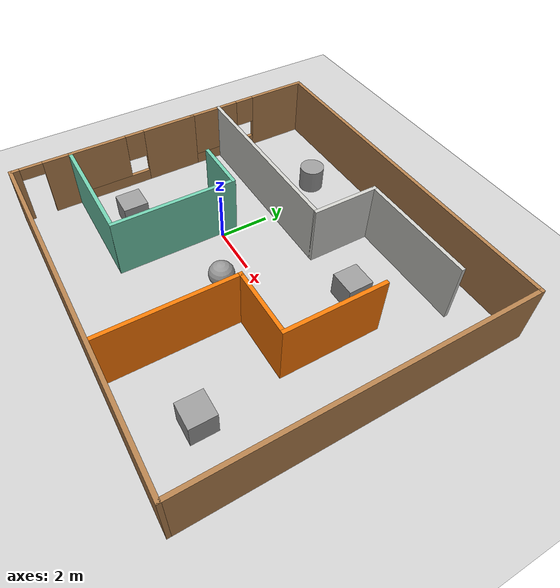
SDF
<sdf version="1.7">
 <world name="default">
  <light name="sun" type="directional">
   <pose>0 0 10 0 -0 0</pose>
   <diffuse>0.8 0.8 0.8 1</diffuse>
   <specular>0.2 0.2 0.2 1</specular>
   <attenuation>
    <range>1000</range>
    <constant>0.9</constant>
    <linear>0.01</linear>
    <quadratic>0.001</quadratic>
   </attenuation>
   <direction>-0.5 0.1 -0.9</direction>
   <spot><inner_angle>0</inner_angle><outer_angle>0</outer_angle><falloff>0</falloff></spot>
  </light>
  <model name="ground_plane">
   <static>1</static>
   <link name="link">
    <collision name="collision">
     <geometry><plane><normal>0 0 1</normal><size>100 100</size></plane></geometry>
     <surface>
      <contact><collide_bitmask>65535</collide_bitmask></contact>
      <friction><ode><mu>100</mu><mu2>50</mu2></ode></friction>
     </surface>
    </collision>
    <visual name="visual">
     <cast_shadows>0</cast_shadows>
     <geometry><plane><normal>0 0 1</normal><size>100 100</size></plane></geometry>
     <material>
      <script><uri>file://media/materials/scripts/gazebo.material</uri><name>Gazebo/Grey</name></script>
     </material>
    </visual>
   </link>
  </model>
  <gravity>0 0 -9.8</gravity>
  <magnetic_field>6e-06 2.3e-05 -4.2e-05</magnetic_field>
  <atmosphere type="adiabatic"/>
  <physics type="ode">
   <max_step_size>0.001</max_step_size>
   <real_time_factor>1</real_time_factor>
   <real_time_update_rate>1000</real_time_update_rate>
  </physics>
  <scene><ambient>0.4 0.4 0.4 1</ambient><background>0.7 0.7 0.7 1</background><shadows>1</shadows></scene>
  <audio><device>default</device></audio>
  <spherical_coordinates>
   <surface_model>EARTH_WGS84</surface_model>
   <latitude_deg>0</latitude_deg>
   <longitude_deg>0</longitude_deg>
   <elevation>0</elevation>
   <heading_deg>0</heading_deg>
  </spherical_coordinates>
  <model name="small_room">
   <pose>2.27525 -0.024975 0 0 -0 0</pose>
   <link name="Wall_0">
    <pose>-7.04035 -1.525 0 0 -0 -1.5708</pose>
    <visual name="Wall_0_Visual_0">
     <pose>-1.59233 0 1.25 0 -0 0</pose>
     <geometry><box><size>2.31534 0.15 2.5</size></box></geometry>
     <material>
      <script><uri>file://media/materials/scripts/gazebo.material</uri><name>Gazebo/Wood</name></script>
      <ambient>1 1 1 1</ambient>
     </material>
     <meta><layer>0</layer></meta>
    </visual>
    <collision name="Wall_0_Collision_0">
     <geometry><box><size>2.31534 0.15 2.5</size></box></geometry>
     <pose>-1.59233 0 1.25 0 -0 0</pose>
    </collision>
    <visual name="Wall_0_Visual_1">
     <pose>1.15767 0 0.25 0 -0 0</pose>
     <geometry><box><size>3.18466 0.15 0.5</size></box></geometry>
     <material>
      <script><uri>file://media/materials/scripts/gazebo.material</uri><name>Gazebo/Wood</name></script>
      <ambient>1 1 1 1</ambient>
     </material>
     <meta><layer>0</layer></meta>
    </visual>
    <collision name="Wall_0_Collision_1">
     <geometry><box><size>3.18466 0.15 0.5</size></box></geometry>
     <pose>1.15767 0 0.25 0 -0 0</pose>
    </collision>
    <visual name="Wall_0_Visual_2">
     <pose>1.55767 0 1.5 0 -0 0</pose>
     <geometry><box><size>2.38466 0.15 2</size></box></geometry>
     <material>
      <script><uri>file://media/materials/scripts/gazebo.material</uri><name>Gazebo/Wood</name></script>
      <ambient>1 1 1 1</ambient>
     </material>
     <meta><layer>0</layer></meta>
    </visual>
    <collision name="Wall_0_Collision_2">
     <geometry><box><size>2.38466 0.15 2</size></box></geometry>
     <pose>1.55767 0 1.5 0 -0 0</pose>
    </collision>
    <visual name="Wall_0_Visual_3">
     <pose>-0.034661 0 1.9 0 -0 0</pose>
     <geometry><box><size>0.8 0.15 1.2</size></box></geometry>
     <material>
      <script><uri>file://media/materials/scripts/gazebo.material</uri><name>Gazebo/Wood</name></script>
      <ambient>1 1 1 1</ambient>
     </material>
     <meta><layer>0</layer></meta>
    </visual>
    <collision name="Wall_0_Collision_3">
     <geometry><box><size>0.8 0.15 1.2</size></box></geometry>
     <pose>-0.034661 0 1.9 0 -0 0</pose>
    </collision>
   </link>
   <link name="Wall_10">
    <collision name="Wall_10_Collision">
     <geometry><box><size>14.25 0.15 2.5</size></box></geometry>
     <pose>0 0 1.25 0 -0 0</pose>
    </collision>
    <visual name="Wall_10_Visual">
     <pose>0 0 1.25 0 -0 0</pose>
     <geometry><box><size>14.25 0.15 2.5</size></box></geometry>
     <material>
      <script><uri>file://media/materials/scripts/gazebo.material</uri><name>Gazebo/Wood</name></script>
      <ambient>1 1 1 1</ambient>
     </material>
     <meta><layer>0</layer></meta>
    </visual>
    <pose>0.009645 6.55 0 0 -0 0</pose>
   </link>
   <link name="Wall_11">
    <collision name="Wall_11_Collision">
     <geometry><box><size>13.25 0.15 2.5</size></box></geometry>
     <pose>0 0 1.25 0 -0 0</pose>
    </collision>
    <visual name="Wall_11_Visual">
     <pose>0 0 1.25 0 -0 0</pose>
     <geometry><box><size>13.25 0.15 2.5</size></box></geometry>
     <material>
      <script><uri>file://media/materials/scripts/gazebo.material</uri><name>Gazebo/Wood</name></script>
      <ambient>1 1 1 1</ambient>
     </material>
     <meta><layer>0</layer></meta>
    </visual>
    <pose>7.05964 -0 0 0 -0 -1.5708</pose>
   </link>
   <link name="Wall_12">
    <collision name="Wall_12_Collision">
     <geometry><box><size>14.25 0.15 2.5</size></box></geometry>
     <pose>0 0 1.25 0 -0 0</pose>
    </collision>
    <visual name="Wall_12_Visual">
     <pose>0 0 1.25 0 -0 0</pose>
     <geometry><box><size>14.25 0.15 2.5</size></box></geometry>
     <material>
      <script><uri>file://media/materials/scripts/gazebo.material</uri><name>Gazebo/Wood</name></script>
      <ambient>1 1 1 1</ambient>
     </material>
     <meta><layer>0</layer></meta>
    </visual>
    <pose>0.009645 -6.55 0 0 -0 3.14159</pose>
   </link>
   <link name="Wall_14">
    <collision name="Wall_14_Collision">
     <geometry><box><size>4.75 0.15 2.5</size></box></geometry>
     <pose>0 0 1.25 0 -0 0</pose>
    </collision>
    <visual name="Wall_14_Visual">
     <pose>0 0 1.25 0 -0 0</pose>
     <geometry><box><size>4.75 0.15 2.5</size></box></geometry>
     <material>
      <script><uri>file://media/materials/scripts/gazebo.material</uri><name>Gazebo/Grey</name></script>
      <ambient>0.435294 0.796078 0.67451 1</ambient>
     </material>
     <meta><layer>0</layer></meta>
    </visual>
    <pose>-4.74036 -4.2 0 0 -0 0</pose>
   </link>
   <link name="Wall_16">
    <collision name="Wall_16_Collision">
     <geometry><box><size>5 0.15 2.5</size></box></geometry>
     <pose>0 0 1.25 0 -0 0</pose>
    </collision>
    <visual name="Wall_16_Visual">
     <pose>0 0 1.25 0 -0 0</pose>
     <geometry><box><size>5 0.15 2.5</size></box></geometry>
     <material>
      <script><uri>file://media/materials/scripts/gazebo.material</uri><name>Gazebo/Grey</name></script>
      <ambient>0.435294 0.796078 0.67451 1</ambient>
     </material>
     <meta><layer>0</layer></meta>
    </visual>
    <pose>-2.44035 -1.775 0 0 -0 1.5708</pose>
   </link>
   <link name="Wall_17">
    <collision name="Wall_17_Collision">
     <geometry><box><size>2.25 0.15 2.5</size></box></geometry>
     <pose>0 0 1.25 0 -0 0</pose>
    </collision>
    <visual name="Wall_17_Visual">
     <pose>0 0 1.25 0 -0 0</pose>
     <geometry><box><size>2.25 0.15 2.5</size></box></geometry>
     <material>
      <script><uri>file://media/materials/scripts/gazebo.material</uri><name>Gazebo/Grey</name></script>
      <ambient>0.435294 0.796078 0.67451 1</ambient>
     </material>
     <meta><layer>0</layer></meta>
    </visual>
    <pose>-3.49036 0.65 0 0 -0 3.14159</pose>
   </link>
   <link name="Wall_19">
    <collision name="Wall_19_Collision">
     <geometry><box><size>7.75 0.15 2.5</size></box></geometry>
     <pose>0 0 1.25 0 -0 0</pose>
    </collision>
    <visual name="Wall_19_Visual">
     <pose>0 0 1.25 0 -0 0</pose>
     <geometry><box><size>7.75 0.15 2.5</size></box></geometry>
     <material>
      <script><uri>file://media/materials/scripts/gazebo.material</uri><name>Gazebo/CeilingTiled</name></script>
      <ambient>0.921569 0.807843 0.615686 1</ambient>
     </material>
     <meta><layer>0</layer></meta>
    </visual>
    <pose>-3.25965 2.42521 0 0 -0 0</pose>
   </link>
   <link name="Wall_22">
    <collision name="Wall_22_Collision">
     <geometry><box><size>2.75 0.15 2.5</size></box></geometry>
     <pose>0 0 1.25 0 -0 0</pose>
    </collision>
    <visual name="Wall_22_Visual">
     <pose>0 0 1.25 0 -0 0</pose>
     <geometry><box><size>2.75 0.15 2.5</size></box></geometry>
     <material>
      <script><uri>file://media/materials/scripts/gazebo.material</uri><name>Gazebo/CeilingTiled</name></script>
      <ambient>0.921569 0.807843 0.615686 1</ambient>
     </material>
     <meta><layer>0</layer></meta>
    </visual>
    <pose>0.540354 3.72521 0 0 -0 1.5708</pose>
   </link>
   <link name="Wall_23">
    <collision name="Wall_23_Collision">
     <geometry><box><size>4.75 0.15 2.5</size></box></geometry>
     <pose>0 0 1.25 0 -0 0</pose>
    </collision>
    <visual name="Wall_23_Visual">
     <pose>0 0 1.25 0 -0 0</pose>
     <geometry><box><size>4.75 0.15 2.5</size></box></geometry>
     <material>
      <script><uri>file://media/materials/scripts/gazebo.material</uri><name>Gazebo/CeilingTiled</name></script>
      <ambient>0.921569 0.807843 0.615686 1</ambient>
     </material>
     <meta><layer>0</layer></meta>
    </visual>
    <pose>2.84035 5.02521 0 0 -0 0</pose>
   </link>
   <link name="Wall_25">
    <collision name="Wall_25_Collision">
     <geometry><box><size>5.25 0.15 2.5</size></box></geometry>
     <pose>0 0 1.25 0 -0 0</pose>
    </collision>
    <visual name="Wall_25_Visual">
     <pose>0 0 1.25 0 -0 0</pose>
     <geometry><box><size>5.25 0.15 2.5</size></box></geometry>
     <material>
      <script><uri>file://media/materials/scripts/gazebo.material</uri><name>Gazebo/Grey</name></script>
      <ambient>0.996078 0.47451 0.0196078 1</ambient>
     </material>
     <meta><layer>0</layer></meta>
    </visual>
    <pose>1.78093 -3.89596 0 0 -0 1.5708</pose>
   </link>
   <link name="Wall_26">
    <collision name="Wall_26_Collision">
     <geometry><box><size>2.75 0.15 2.5</size></box></geometry>
     <pose>0 0 1.25 0 -0 0</pose>
    </collision>
    <visual name="Wall_26_Visual">
     <pose>0 0 1.25 0 -0 0</pose>
     <geometry><box><size>2.75 0.15 2.5</size></box></geometry>
     <material>
      <script><uri>file://media/materials/scripts/gazebo.material</uri><name>Gazebo/Grey</name></script>
      <ambient>0.996078 0.47451 0.0196078 1</ambient>
     </material>
     <meta><layer>0</layer></meta>
    </visual>
    <pose>3.08093 -1.34596 0 0 -0 0</pose>
   </link>
   <link name="Wall_27">
    <collision name="Wall_27_Collision">
     <geometry><box><size>4 0.15 2.5</size></box></geometry>
     <pose>0 0 1.25 0 -0 0</pose>
    </collision>
    <visual name="Wall_27_Visual">
     <pose>0 0 1.25 0 -0 0</pose>
     <geometry><box><size>4 0.15 2.5</size></box></geometry>
     <material>
      <script><uri>file://media/materials/scripts/gazebo.material</uri><name>Gazebo/Grey</name></script>
      <ambient>0.996078 0.47451 0.0196078 1</ambient>
     </material>
     <meta><layer>0</layer></meta>
    </visual>
    <pose>4.38093 0.579044 0 0 -0 1.5708</pose>
   </link>
   <link name="Wall_5">
    <pose>-7.04035 3.85 0 0 -0 -1.5708</pose>
    <visual name="Wall_5_Visual_0">
     <pose>-1.50221 0 1.25 0 -0 0</pose>
     <geometry><box><size>2.54559 0.15 2.5</size></box></geometry>
     <material>
      <script><uri>file://media/materials/scripts/gazebo.material</uri><name>Gazebo/Wood</name></script>
      <ambient>1 1 1 1</ambient>
     </material>
     <meta><layer>0</layer></meta>
    </visual>
    <collision name="Wall_5_Collision_0">
     <geometry><box><size>2.54559 0.15 2.5</size></box></geometry>
     <pose>-1.50221 0 1.25 0 -0 0</pose>
    </collision>
    <visual name="Wall_5_Visual_1">
     <pose>1.27279 0 0.25 0 -0 0</pose>
     <geometry><box><size>3.00441 0.15 0.5</size></box></geometry>
     <material>
      <script><uri>file://media/materials/scripts/gazebo.material</uri><name>Gazebo/Wood</name></script>
      <ambient>1 1 1 1</ambient>
     </material>
     <meta><layer>0</layer></meta>
    </visual>
    <collision name="Wall_5_Collision_1">
     <geometry><box><size>3.00441 0.15 0.5</size></box></geometry>
     <pose>1.27279 0 0.25 0 -0 0</pose>
    </collision>
    <visual name="Wall_5_Visual_2">
     <pose>1.6728 0 1.5 0 -0 0</pose>
     <geometry><box><size>2.20441 0.15 2</size></box></geometry>
     <material>
      <script><uri>file://media/materials/scripts/gazebo.material</uri><name>Gazebo/Wood</name></script>
      <ambient>1 1 1 1</ambient>
     </material>
     <meta><layer>0</layer></meta>
    </visual>
    <collision name="Wall_5_Collision_2">
     <geometry><box><size>2.20441 0.15 2</size></box></geometry>
     <pose>1.6728 0 1.5 0 -0 0</pose>
    </collision>
    <visual name="Wall_5_Visual_3">
     <pose>0.17059 0 1.9 0 -0 0</pose>
     <geometry><box><size>0.8 0.15 1.2</size></box></geometry>
     <material>
      <script><uri>file://media/materials/scripts/gazebo.material</uri><name>Gazebo/Wood</name></script>
      <ambient>1 1 1 1</ambient>
     </material>
     <meta><layer>0</layer></meta>
    </visual>
    <collision name="Wall_5_Collision_3">
     <geometry><box><size>0.8 0.15 1.2</size></box></geometry>
     <pose>0.17059 0 1.9 0 -0 0</pose>
    </collision>
   </link>
   <link name="Wall_8">
    <pose>-7.04035 -5.375 0 0 -0 -1.5708</pose>
    <visual name="Wall_8_Visual_0">
     <pose>-0.651014 0 1.25 0 -0 0</pose>
     <geometry><box><size>1.19797 0.15 2.5</size></box></geometry>
     <material>
      <script><uri>file://media/materials/scripts/gazebo.material</uri><name>Gazebo/Wood</name></script>
      <ambient>1 1 1 1</ambient>
     </material>
     <meta><layer>0</layer></meta>
    </visual>
    <collision name="Wall_8_Collision_0">
     <geometry><box><size>1.19797 0.15 2.5</size></box></geometry>
     <pose>-0.651014 0 1.25 0 -0 0</pose>
    </collision>
    <visual name="Wall_8_Visual_1">
     <pose>1.04899 0 1.25 0 -0 0</pose>
     <geometry><box><size>0.402029 0.15 2.5</size></box></geometry>
     <material>
      <script><uri>file://media/materials/scripts/gazebo.material</uri><name>Gazebo/Wood</name></script>
      <ambient>1 1 1 1</ambient>
     </material>
     <meta><layer>0</layer></meta>
    </visual>
    <collision name="Wall_8_Collision_1">
     <geometry><box><size>0.402029 0.15 2.5</size></box></geometry>
     <pose>1.04899 0 1.25 0 -0 0</pose>
    </collision>
    <visual name="Wall_8_Visual_2">
     <pose>0.397971 0 2.25 0 -0 0</pose>
     <geometry><box><size>0.9 0.15 0.5</size></box></geometry>
     <material>
      <script><uri>file://media/materials/scripts/gazebo.material</uri><name>Gazebo/Wood</name></script>
      <ambient>1 1 1 1</ambient>
     </material>
     <meta><layer>0</layer></meta>
    </visual>
    <collision name="Wall_8_Collision_2">
     <geometry><box><size>0.9 0.15 0.5</size></box></geometry>
     <pose>0.397971 0 2.25 0 -0 0</pose>
    </collision>
   </link>
   <static>1</static>
  </model>
  <model name="unit_sphere">
   <pose>2.17747 -1.17264 0.5 0 -0 0</pose>
   <link name="link">
    <inertial>
     <mass>1</mass>
     <inertia><ixx>0.1</ixx><ixy>0</ixy><ixz>0</ixz><iyy>0.1</iyy><iyz>0</iyz><izz>0.1</izz></inertia>
    </inertial>
    <collision name="collision"><geometry><sphere><radius>0.5</radius></sphere></geometry></collision>
    <visual name="visual">
     <geometry><sphere><radius>0.5</radius></sphere></geometry>
     <material>
      <script><name>Gazebo/Grey</name><uri>file://media/materials/scripts/gazebo.material</uri></script>
     </material>
    </visual>
   </link>
  </model>
  <model name="unit_box">
   <pose>6.86162 -4.46657 0.499995 -1e-05 -0 -0</pose>
   <link name="link">
    <inertial>
     <mass>1</mass>
     <inertia>
      <ixx>0.166667</ixx>
      <ixy>0</ixy>
      <ixz>0</ixz>
      <iyy>0.166667</iyy>
      <iyz>0</iyz>
      <izz>0.166667</izz>
     </inertia>
    </inertial>
    <collision name="collision"><geometry><box><size>1 1 1</size></box></geometry></collision>
    <visual name="visual">
     <geometry><box><size>1 1 1</size></box></geometry>
     <material>
      <script><name>Gazebo/Grey</name><uri>file://media/materials/scripts/gazebo.material</uri></script>
     </material>
    </visual>
   </link>
  </model>
  <model name="unit_box_0">
   <pose>-2.69204 -2.68848 0.499995 0 1e-05 0</pose>
   <link name="link">
    <inertial>
     <mass>1</mass>
     <inertia>
      <ixx>0.166667</ixx>
      <ixy>0</ixy>
      <ixz>0</ixz>
      <iyy>0.166667</iyy>
      <iyz>0</iyz>
      <izz>0.166667</izz>
     </inertia>
    </inertial>
    <collision name="collision"><geometry><box><size>1 1 1</size></box></geometry></collision>
    <visual name="visual">
     <geometry><box><size>1 1 1</size></box></geometry>
     <material>
      <script><name>Gazebo/Grey</name><uri>file://media/materials/scripts/gazebo.material</uri></script>
     </material>
    </visual>
   </link>
  </model>
  <model name="unit_cylinder">
   <pose>-0.859724 4.80627 0.499993 -3e-06 -4e-06 -0</pose>
   <link name="link">
    <inertial>
     <mass>1</mass>
     <inertia><ixx>0.145833</ixx><ixy>0</ixy><ixz>0</ixz><iyy>0.145833</iyy><iyz>0</iyz><izz>0.125</izz></inertia>
    </inertial>
    <collision name="collision">
     <geometry><cylinder><radius>0.5</radius><length>1</length></cylinder></geometry>
    </collision>
    <visual name="visual">
     <geometry><cylinder><radius>0.5</radius><length>1</length></cylinder></geometry>
     <material>
      <script><name>Gazebo/Grey</name><uri>file://media/materials/scripts/gazebo.material</uri></script>
     </material>
    </visual>
   </link>
  </model>
  <model name="unit_box_1">
   <pose>5.0644 2.58706 0.5 0 -0 0</pose>
   <link name="link">
    <inertial>
     <mass>1</mass>
     <inertia>
      <ixx>0.166667</ixx>
      <ixy>0</ixy>
      <ixz>0</ixz>
      <iyy>0.166667</iyy>
      <iyz>0</iyz>
      <izz>0.166667</izz>
     </inertia>
    </inertial>
    <collision name="collision"><geometry><box><size>1 1 1</size></box></geometry></collision>
    <visual name="visual">
     <geometry><box><size>1 1 1</size></box></geometry>
     <material>
      <script><name>Gazebo/Grey</name><uri>file://media/materials/scripts/gazebo.material</uri></script>
     </material>
    </visual>
   </link>
  </model>
 </world>
</sdf>
